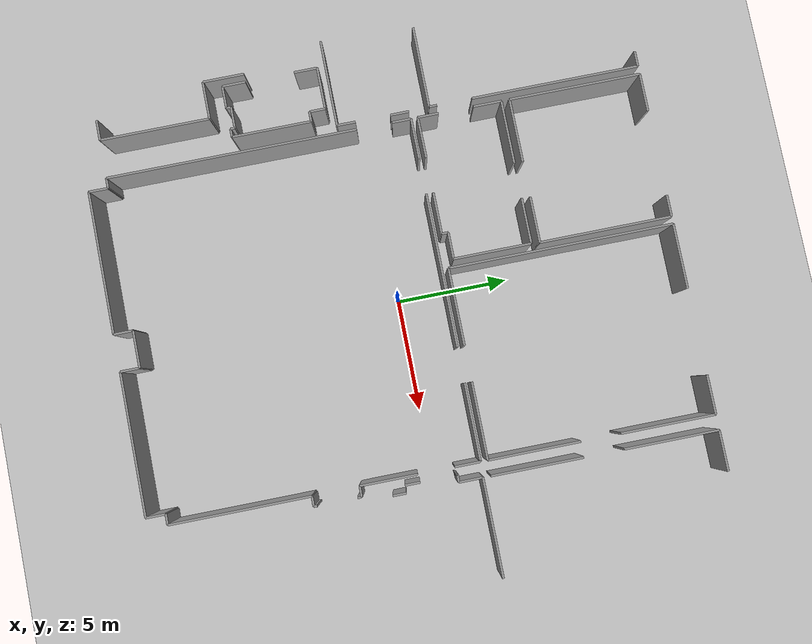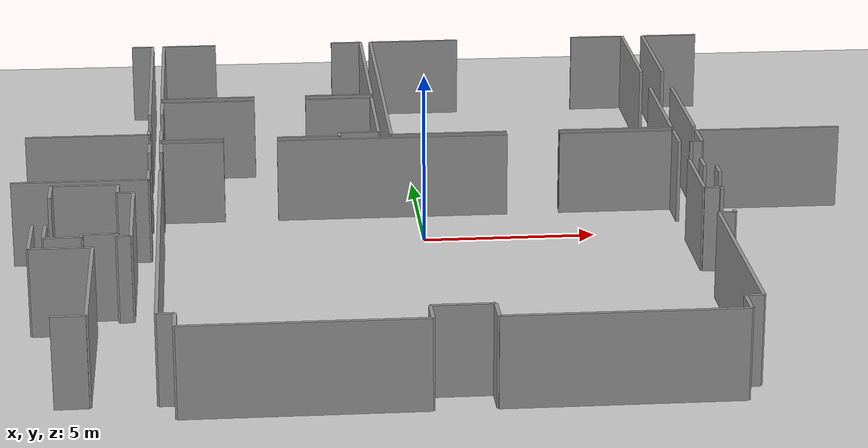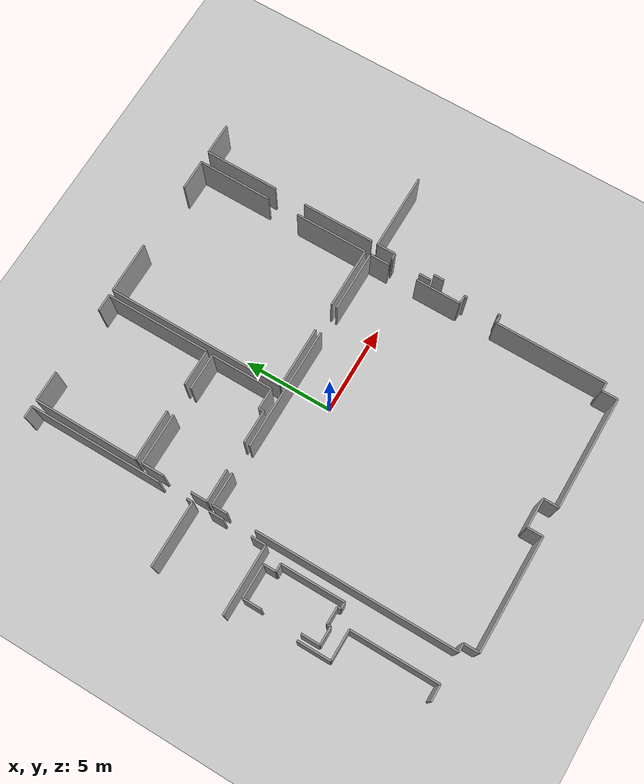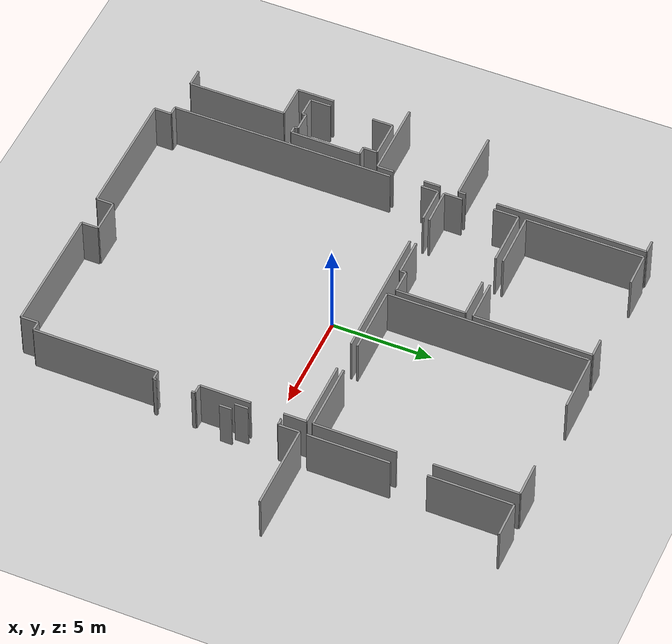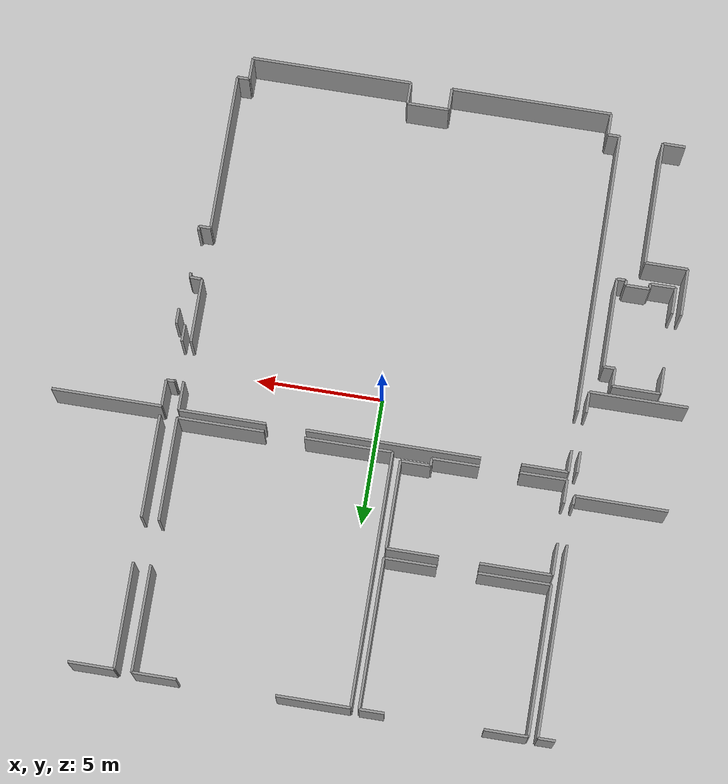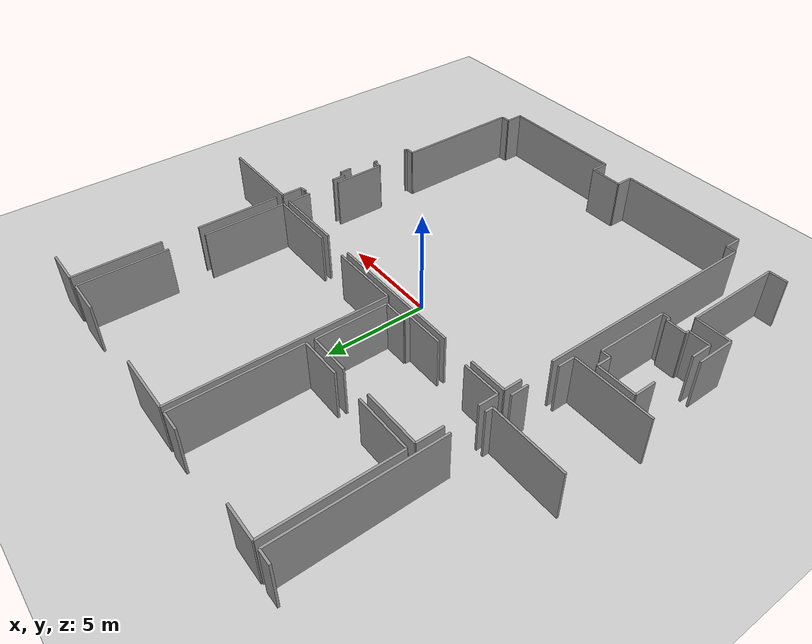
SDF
<sdf version="1.6">
 <world name="default">
  <model name="ground_plane">
   <static>1</static>
   <link name="link">
    <collision name="collision">
     <geometry><plane><normal>0 0 1</normal><size>100 100</size></plane></geometry>
     <surface><friction><ode><mu>100</mu><mu2>50</mu2></ode></friction></surface>
    </collision>
    <visual name="visual">
     <cast_shadows>0</cast_shadows>
     <geometry><plane><normal>0 0 1</normal><size>100 100</size></plane></geometry>
     <material>
      <script><uri>file://media/materials/scripts/gazebo.material</uri><name>Gazebo/Grey</name></script>
     </material>
    </visual>
   </link>
  </model>
  <model name="0510034691_Layout1">
   <static>1</static>
   <link name="Wall_57">
    <collision name="Wall_57_Collision">
     <geometry><box><size>0.836447291492 0.1 2.5</size></box></geometry>
     <pose>0.418223645746 0 1.25 0 0 0</pose>
    </collision>
    <visual name="Wall_57_Visual">
     <pose>0.418223645746 0 1.25 0 0 0</pose>
     <geometry><box><size>0.836447291492 0.1 2.5</size></box></geometry>
     <material>
      <script><uri>file://media/materials/scripts/gazebo.material</uri><name>Gazebo/Grey</name></script>
      <ambient>1 1 1 1</ambient>
     </material>
    </visual>
    <pose>48.5394900735 -10.374437581 0 0 0 -1.57079632679</pose>
   </link>
   <link name="Wall_58">
    <collision name="Wall_58_Collision">
     <geometry><box><size>0.828694171179 0.1 2.5</size></box></geometry>
     <pose>0.414347085589 0 1.25 0 0 0</pose>
    </collision>
    <visual name="Wall_58_Visual">
     <pose>0.414347085589 0 1.25 0 0 0</pose>
     <geometry><box><size>0.828694171179 0.1 2.5</size></box></geometry>
     <material>
      <script><uri>file://media/materials/scripts/gazebo.material</uri><name>Gazebo/Grey</name></script>
      <ambient>1 1 1 1</ambient>
     </material>
    </visual>
    <pose>48.5394900735 -12.7767609751 0 0 0 -1.57079632679</pose>
   </link>
   <link name="Wall_59">
    <collision name="Wall_59_Collision">
     <geometry><box><size>3.87744985892 0.1 2.5</size></box></geometry>
     <pose>1.93872492946 0 1.25 0 0 0</pose>
    </collision>
    <visual name="Wall_59_Visual">
     <pose>1.93872492946 0 1.25 0 0 0</pose>
     <geometry><box><size>3.87744985892 0.1 2.5</size></box></geometry>
     <material>
      <script><uri>file://media/materials/scripts/gazebo.material</uri><name>Gazebo/Grey</name></script>
      <ambient>1 1 1 1</ambient>
     </material>
    </visual>
    <pose>48.5394900735 -13.6054551463 0 0 0 3.14159265359</pose>
   </link>
   <link name="Wall_144">
    <collision name="Wall_144_Collision">
     <geometry><box><size>1.85960497217 0.1 2.5</size></box></geometry>
     <pose>0.929802486083 0 1.25 0 0 0</pose>
    </collision>
    <visual name="Wall_144_Visual">
     <pose>0.929802486083 0 1.25 0 0 0</pose>
     <geometry><box><size>1.85960497217 0.1 2.5</size></box></geometry>
     <material>
      <script><uri>file://media/materials/scripts/gazebo.material</uri><name>Gazebo/Grey</name></script>
      <ambient>1 1 1 1</ambient>
     </material>
    </visual>
    <pose>45.4575611988 -17.2077327843 0 0 0 -1.57079632679</pose>
   </link>
   <link name="Wall_145">
    <collision name="Wall_145_Collision">
     <geometry><box><size>1.68878212461 0.1 2.5</size></box></geometry>
     <pose>0.844391062305 0 1.25 0 0 0</pose>
    </collision>
    <visual name="Wall_145_Visual">
     <pose>0.844391062305 0 1.25 0 0 0</pose>
     <geometry><box><size>1.68878212461 0.1 2.5</size></box></geometry>
     <material>
      <script><uri>file://media/materials/scripts/gazebo.material</uri><name>Gazebo/Grey</name></script>
      <ambient>1 1 1 1</ambient>
     </material>
    </visual>
    <pose>45.4575611988 -19.0673377564 0 0 0 0.0</pose>
   </link>
   <link name="Wall_146">
    <collision name="Wall_146_Collision">
     <geometry><box><size>4.90353084725 0.1 2.5</size></box></geometry>
     <pose>2.45176542363 0 1.25 0 0 0</pose>
    </collision>
    <visual name="Wall_146_Visual">
     <pose>2.45176542363 0 1.25 0 0 0</pose>
     <geometry><box><size>4.90353084725 0.1 2.5</size></box></geometry>
     <material>
      <script><uri>file://media/materials/scripts/gazebo.material</uri><name>Gazebo/Grey</name></script>
      <ambient>1 1 1 1</ambient>
     </material>
    </visual>
    <pose>47.1463433234 -19.0673377564 0 0 0 -1.57079632679</pose>
   </link>
   <link name="Wall_147">
    <collision name="Wall_147_Collision">
     <geometry><box><size>0.895040545006 0.1 2.5</size></box></geometry>
     <pose>0.447520272503 0 1.25 0 0 0</pose>
    </collision>
    <visual name="Wall_147_Visual">
     <pose>0.447520272503 0 1.25 0 0 0</pose>
     <geometry><box><size>0.895040545006 0.1 2.5</size></box></geometry>
     <material>
      <script><uri>file://media/materials/scripts/gazebo.material</uri><name>Gazebo/Grey</name></script>
      <ambient>1 1 1 1</ambient>
     </material>
    </visual>
    <pose>47.1463433234 -23.9708686037 0 0 0 3.14159265359</pose>
   </link>
   <link name="Wall_149">
    <collision name="Wall_149_Collision">
     <geometry><box><size>1.04362083429 0.1 2.5</size></box></geometry>
     <pose>0.521810417143 0 1.25 0 0 0</pose>
    </collision>
    <visual name="Wall_149_Visual">
     <pose>0.521810417143 0 1.25 0 0 0</pose>
     <geometry><box><size>1.04362083429 0.1 2.5</size></box></geometry>
     <material>
      <script><uri>file://media/materials/scripts/gazebo.material</uri><name>Gazebo/Grey</name></script>
      <ambient>1 1 1 1</ambient>
     </material>
    </visual>
    <pose>45.8186532449 -18.2516078192 0 0 0 1.57079632679</pose>
   </link>
   <link name="Wall_150">
    <collision name="Wall_150_Collision">
     <geometry><box><size>1.04311243295 0.1 2.5</size></box></geometry>
     <pose>0.521556216477 0 1.25 0 0 0</pose>
    </collision>
    <visual name="Wall_150_Visual">
     <pose>0.521556216477 0 1.25 0 0 0</pose>
     <geometry><box><size>1.04311243295 0.1 2.5</size></box></geometry>
     <material>
      <script><uri>file://media/materials/scripts/gazebo.material</uri><name>Gazebo/Grey</name></script>
      <ambient>1 1 1 1</ambient>
     </material>
    </visual>
    <pose>45.8186532449 -15.0208444546 0 0 0 1.57079632679</pose>
   </link>
   <link name="Wall_151">
    <collision name="Wall_151_Collision">
     <geometry><box><size>1.87841582145 0.1 2.5</size></box></geometry>
     <pose>0.939207910725 0 1.25 0 0 0</pose>
    </collision>
    <visual name="Wall_151_Visual">
     <pose>0.939207910725 0 1.25 0 0 0</pose>
     <geometry><box><size>1.87841582145 0.1 2.5</size></box></geometry>
     <material>
      <script><uri>file://media/materials/scripts/gazebo.material</uri><name>Gazebo/Grey</name></script>
      <ambient>1 1 1 1</ambient>
     </material>
    </visual>
    <pose>45.8186532449 -13.9777320217 0 0 0 0.0</pose>
   </link>
   <link name="Wall_152">
    <collision name="Wall_152_Collision">
     <geometry><box><size>0.707059152495 0.1 2.5</size></box></geometry>
     <pose>0.353529576247 0 1.25 0 0 0</pose>
    </collision>
    <visual name="Wall_152_Visual">
     <pose>0.353529576247 0 1.25 0 0 0</pose>
     <geometry><box><size>0.707059152495 0.1 2.5</size></box></geometry>
     <material>
      <script><uri>file://media/materials/scripts/gazebo.material</uri><name>Gazebo/Grey</name></script>
      <ambient>1 1 1 1</ambient>
     </material>
    </visual>
    <pose>47.6970690663 -13.9777320217 0 0 0 -1.57079632679</pose>
   </link>
   <link name="Wall_153">
    <collision name="Wall_153_Collision">
     <geometry><box><size>0.441927857851 0.1 2.5</size></box></geometry>
     <pose>0.220963928925 0 1.25 0 0 0</pose>
    </collision>
    <visual name="Wall_153_Visual">
     <pose>0.220963928925 0 1.25 0 0 0</pose>
     <geometry><box><size>0.441927857851 0.1 2.5</size></box></geometry>
     <material>
      <script><uri>file://media/materials/scripts/gazebo.material</uri><name>Gazebo/Grey</name></script>
      <ambient>1 1 1 1</ambient>
     </material>
    </visual>
    <pose>47.6970690663 -14.6847911742 0 0 0 0.0</pose>
   </link>
   <link name="Wall_154">
    <collision name="Wall_154_Collision">
     <geometry><box><size>3.55664861842 0.1 2.5</size></box></geometry>
     <pose>1.77832430921 0 1.25 0 0 0</pose>
    </collision>
    <visual name="Wall_154_Visual">
     <pose>1.77832430921 0 1.25 0 0 0</pose>
     <geometry><box><size>3.55664861842 0.1 2.5</size></box></geometry>
     <material>
      <script><uri>file://media/materials/scripts/gazebo.material</uri><name>Gazebo/Grey</name></script>
      <ambient>1 1 1 1</ambient>
     </material>
    </visual>
    <pose>48.1389969242 -14.6847911742 0 0 0 -1.57079632679</pose>
   </link>
   <link name="Wall_155">
    <collision name="Wall_155_Collision">
     <geometry><box><size>0.363252751722 0.1 2.5</size></box></geometry>
     <pose>0.181626375861 0 1.25 0 0 0</pose>
    </collision>
    <visual name="Wall_155_Visual">
     <pose>0.181626375861 0 1.25 0 0 0</pose>
     <geometry><box><size>0.363252751722 0.1 2.5</size></box></geometry>
     <material>
      <script><uri>file://media/materials/scripts/gazebo.material</uri><name>Gazebo/Grey</name></script>
      <ambient>1 1 1 1</ambient>
     </material>
    </visual>
    <pose>48.1389969242 -18.2414397926 0 0 0 3.14159265359</pose>
   </link>
   <link name="Wall_156">
    <collision name="Wall_156_Collision">
     <geometry><box><size>0.195099011159 0.1 2.5</size></box></geometry>
     <pose>0.0975495055797 0 1.25 0 0 0</pose>
    </collision>
    <visual name="Wall_156_Visual">
     <pose>0.0975495055797 0 1.25 0 0 0</pose>
     <geometry><box><size>0.195099011159 0.1 2.5</size></box></geometry>
     <material>
      <script><uri>file://media/materials/scripts/gazebo.material</uri><name>Gazebo/Grey</name></script>
      <ambient>1 1 1 1</ambient>
     </material>
    </visual>
    <pose>47.7757441724 -18.2414397926 0 0 0 1.57079632679</pose>
   </link>
   <link name="Wall_157">
    <collision name="Wall_157_Collision">
     <geometry><box><size>0.953887999187 0.1 2.5</size></box></geometry>
     <pose>0.476943999593 0 1.25 0 0 0</pose>
    </collision>
    <visual name="Wall_157_Visual">
     <pose>0.476943999593 0 1.25 0 0 0</pose>
     <geometry><box><size>0.953887999187 0.1 2.5</size></box></geometry>
     <material>
      <script><uri>file://media/materials/scripts/gazebo.material</uri><name>Gazebo/Grey</name></script>
      <ambient>1 1 1 1</ambient>
     </material>
    </visual>
    <pose>47.7757441724 -18.0463407814 0 0 0 3.14159265359</pose>
   </link>
   <link name="Wall_158">
    <collision name="Wall_158_Collision">
     <geometry><box><size>0.202343730141 0.1 2.5</size></box></geometry>
     <pose>0.10117186507 0 1.25 0 0 0</pose>
    </collision>
    <visual name="Wall_158_Visual">
     <pose>0.10117186507 0 1.25 0 0 0</pose>
     <geometry><box><size>0.202343730141 0.1 2.5</size></box></geometry>
     <material>
      <script><uri>file://media/materials/scripts/gazebo.material</uri><name>Gazebo/Grey</name></script>
      <ambient>1 1 1 1</ambient>
     </material>
    </visual>
    <pose>46.8218561733 -18.0463407814 0 0 0 -1.57079632679</pose>
   </link>
   <link name="Wall_159">
    <collision name="Wall_159_Collision">
     <geometry><box><size>1.0032071876 0.1 2.5</size></box></geometry>
     <pose>0.501603593802 0 1.25 0 0 0</pose>
    </collision>
    <visual name="Wall_159_Visual">
     <pose>0.501603593802 0 1.25 0 0 0</pose>
     <geometry><box><size>1.0032071876 0.1 2.5</size></box></geometry>
     <material>
      <script><uri>file://media/materials/scripts/gazebo.material</uri><name>Gazebo/Grey</name></script>
      <ambient>1 1 1 1</ambient>
     </material>
    </visual>
    <pose>46.8218561733 -18.2486845116 0 0 0 -3.13867868743</pose>
   </link>
   <link name="Wall_164">
    <collision name="Wall_164_Collision">
     <geometry><box><size>0.675919570909 0.1 2.5</size></box></geometry>
     <pose>0.337959785455 0 1.25 0 0 0</pose>
    </collision>
    <visual name="Wall_164_Visual">
     <pose>0.337959785455 0 1.25 0 0 0</pose>
     <geometry><box><size>0.675919570909 0.1 2.5</size></box></geometry>
     <material>
      <script><uri>file://media/materials/scripts/gazebo.material</uri><name>Gazebo/Grey</name></script>
      <ambient>1 1 1 1</ambient>
     </material>
    </visual>
    <pose>47.8276011083 -0.0165230432904 0 0 0 0.0</pose>
   </link>
   <link name="Wall_165">
    <collision name="Wall_165_Collision">
     <geometry><box><size>7.50997737614 0.1 2.5</size></box></geometry>
     <pose>3.75498868807 0 1.25 0 0 0</pose>
    </collision>
    <visual name="Wall_165_Visual">
     <pose>3.75498868807 0 1.25 0 0 0</pose>
     <geometry><box><size>7.50997737614 0.1 2.5</size></box></geometry>
     <material>
      <script><uri>file://media/materials/scripts/gazebo.material</uri><name>Gazebo/Grey</name></script>
      <ambient>1 1 1 1</ambient>
     </material>
    </visual>
    <pose>48.5035206792 -0.0165230432904 0 0 0 -1.57079632679</pose>
   </link>
   <link name="Wall_166">
    <collision name="Wall_166_Collision">
     <geometry><box><size>0.35384732708 0.1 2.5</size></box></geometry>
     <pose>0.17692366354 0 1.25 0 0 0</pose>
    </collision>
    <visual name="Wall_166_Visual">
     <pose>0.17692366354 0 1.25 0 0 0</pose>
     <geometry><box><size>0.35384732708 0.1 2.5</size></box></geometry>
     <material>
      <script><uri>file://media/materials/scripts/gazebo.material</uri><name>Gazebo/Grey</name></script>
      <ambient>1 1 1 1</ambient>
     </material>
    </visual>
    <pose>48.5035206792 -9.10534075599 0 0 0 -1.57079632679</pose>
   </link>
   <link name="Wall_167">
    <collision name="Wall_167_Collision">
     <geometry><box><size>3.65414307076 0.1 2.5</size></box></geometry>
     <pose>1.82707153538 0 1.25 0 0 0</pose>
    </collision>
    <visual name="Wall_167_Visual">
     <pose>1.82707153538 0 1.25 0 0 0</pose>
     <geometry><box><size>3.65414307076 0.1 2.5</size></box></geometry>
     <material>
      <script><uri>file://media/materials/scripts/gazebo.material</uri><name>Gazebo/Grey</name></script>
      <ambient>1 1 1 1</ambient>
     </material>
    </visual>
    <pose>48.5035206792 -9.45918808307 0 0 0 3.13943613519</pose>
   </link>
   <link name="Wall_168">
    <collision name="Wall_168_Collision">
     <geometry><box><size>11.1975393376 0.1 2.5</size></box></geometry>
     <pose>5.59876966878 0 1.25 0 0 0</pose>
    </collision>
    <visual name="Wall_168_Visual">
     <pose>5.59876966878 0 1.25 0 0 0</pose>
     <geometry><box><size>11.1975393376 0.1 2.5</size></box></geometry>
     <material>
      <script><uri>file://media/materials/scripts/gazebo.material</uri><name>Gazebo/Grey</name></script>
      <ambient>1 1 1 1</ambient>
     </material>
    </visual>
    <pose>48.8796105646 -23.9868832456 0 0 0 1.57079632679</pose>
   </link>
   <link name="Wall_169">
    <collision name="Wall_169_Collision">
     <geometry><box><size>0.859325351432 0.1 2.5</size></box></geometry>
     <pose>0.429662675716 0 1.25 0 0 0</pose>
    </collision>
    <visual name="Wall_169_Visual">
     <pose>0.429662675716 0 1.25 0 0 0</pose>
     <geometry><box><size>0.859325351432 0.1 2.5</size></box></geometry>
     <material>
      <script><uri>file://media/materials/scripts/gazebo.material</uri><name>Gazebo/Grey</name></script>
      <ambient>1 1 1 1</ambient>
     </material>
    </visual>
    <pose>48.8796105646 -11.2032588525 0 0 0 1.57079632679</pose>
   </link>
   <link name="Wall_170">
    <collision name="Wall_170_Collision">
     <geometry><box><size>1.83253260124 0.1 2.5</size></box></geometry>
     <pose>0.916266300618 0 1.25 0 0 0</pose>
    </collision>
    <visual name="Wall_170_Visual">
     <pose>0.916266300618 0 1.25 0 0 0</pose>
     <geometry><box><size>1.83253260124 0.1 2.5</size></box></geometry>
     <material>
      <script><uri>file://media/materials/scripts/gazebo.material</uri><name>Gazebo/Grey</name></script>
      <ambient>1 1 1 1</ambient>
     </material>
    </visual>
    <pose>48.8796105646 -10.3439335011 0 0 0 0.0</pose>
   </link>
   <link name="Wall_171">
    <collision name="Wall_171_Collision">
     <geometry><box><size>6.85795266784 0.1 2.5</size></box></geometry>
     <pose>3.42897633392 0 1.25 0 0 0</pose>
    </collision>
    <visual name="Wall_171_Visual">
     <pose>3.42897633392 0 1.25 0 0 0</pose>
     <geometry><box><size>6.85795266784 0.1 2.5</size></box></geometry>
     <material>
      <script><uri>file://media/materials/scripts/gazebo.material</uri><name>Gazebo/Grey</name></script>
      <ambient>1 1 1 1</ambient>
     </material>
    </visual>
    <pose>52.295050713 -10.3439335011 0 0 0 0.0</pose>
   </link>
   <link name="Wall_172">
    <collision name="Wall_172_Collision">
     <geometry><box><size>3.43196319174 0.1 2.5</size></box></geometry>
     <pose>1.71598159587 0 1.25 0 0 0</pose>
    </collision>
    <visual name="Wall_172_Visual">
     <pose>1.71598159587 0 1.25 0 0 0</pose>
     <geometry><box><size>3.43196319174 0.1 2.5</size></box></geometry>
     <material>
      <script><uri>file://media/materials/scripts/gazebo.material</uri><name>Gazebo/Grey</name></script>
      <ambient>1 1 1 1</ambient>
     </material>
    </visual>
    <pose>60.7232008948 -10.3439335011 0 0 0 0.0</pose>
   </link>
   <link name="Wall_173">
    <collision name="Wall_173_Collision">
     <geometry><box><size>1.13004906073 0.1 2.5</size></box></geometry>
     <pose>0.565024530364 0 1.25 0 0 0</pose>
    </collision>
    <visual name="Wall_173_Visual">
     <pose>0.565024530364 0 1.25 0 0 0</pose>
     <geometry><box><size>1.13004906073 0.1 2.5</size></box></geometry>
     <material>
      <script><uri>file://media/materials/scripts/gazebo.material</uri><name>Gazebo/Grey</name></script>
      <ambient>1 1 1 1</ambient>
     </material>
    </visual>
    <pose>64.1551640865 -10.3439335011 0 0 0 -1.57079632679</pose>
   </link>
   <link name="Wall_174">
    <collision name="Wall_174_Collision">
     <geometry><box><size>2.53145733242 0.1 2.5</size></box></geometry>
     <pose>1.26572866621 0 1.25 0 0 0</pose>
    </collision>
    <visual name="Wall_174_Visual">
     <pose>1.26572866621 0 1.25 0 0 0</pose>
     <geometry><box><size>2.53145733242 0.1 2.5</size></box></geometry>
     <material>
      <script><uri>file://media/materials/scripts/gazebo.material</uri><name>Gazebo/Grey</name></script>
      <ambient>1 1 1 1</ambient>
     </material>
    </visual>
    <pose>64.1551640865 -13.0906987976 0 0 0 -1.57079632679</pose>
   </link>
   <link name="Wall_175">
    <collision name="Wall_175_Collision">
     <geometry><box><size>0.47319078444 0.1 2.5</size></box></geometry>
     <pose>0.23659539222 0 1.25 0 0 0</pose>
    </collision>
    <visual name="Wall_175_Visual">
     <pose>0.23659539222 0 1.25 0 0 0</pose>
     <geometry><box><size>0.47319078444 0.1 2.5</size></box></geometry>
     <material>
      <script><uri>file://media/materials/scripts/gazebo.material</uri><name>Gazebo/Grey</name></script>
      <ambient>1 1 1 1</ambient>
     </material>
    </visual>
    <pose>64.1551640865 -15.62215613 0 0 0 -0.022833215406</pose>
   </link>
   <link name="Wall_176">
    <collision name="Wall_176_Collision">
     <geometry><box><size>0.172093850886 0.1 2.5</size></box></geometry>
     <pose>0.0860469254429 0 1.25 0 0 0</pose>
    </collision>
    <visual name="Wall_176_Visual">
     <pose>0.0860469254429 0 1.25 0 0 0</pose>
     <geometry><box><size>0.172093850886 0.1 2.5</size></box></geometry>
     <material>
      <script><uri>file://media/materials/scripts/gazebo.material</uri><name>Gazebo/Grey</name></script>
      <ambient>1 1 1 1</ambient>
     </material>
    </visual>
    <pose>64.628231526 -15.6329596584 0 0 0 -1.57079632679</pose>
   </link>
   <link name="Wall_177">
    <collision name="Wall_177_Collision">
     <geometry><box><size>0.152901700602 0.1 2.5</size></box></geometry>
     <pose>0.0764508503012 0 1.25 0 0 0</pose>
    </collision>
    <visual name="Wall_177_Visual">
     <pose>0.0764508503012 0 1.25 0 0 0</pose>
     <geometry><box><size>0.152901700602 0.1 2.5</size></box></geometry>
     <material>
      <script><uri>file://media/materials/scripts/gazebo.material</uri><name>Gazebo/Grey</name></script>
      <ambient>1 1 1 1</ambient>
     </material>
    </visual>
    <pose>64.628231526 -17.5586568037 0 0 0 -1.57079632679</pose>
   </link>
   <link name="Wall_178">
    <collision name="Wall_178_Collision">
     <geometry><box><size>0.449172576832 0.1 2.5</size></box></geometry>
     <pose>0.224586288416 0 1.25 0 0 0</pose>
    </collision>
    <visual name="Wall_178_Visual">
     <pose>0.224586288416 0 1.25 0 0 0</pose>
     <geometry><box><size>0.449172576832 0.1 2.5</size></box></geometry>
     <material>
      <script><uri>file://media/materials/scripts/gazebo.material</uri><name>Gazebo/Grey</name></script>
      <ambient>1 1 1 1</ambient>
     </material>
    </visual>
    <pose>64.628231526 -17.7115585043 0 0 0 3.14159265359</pose>
   </link>
   <link name="Wall_179">
    <collision name="Wall_179_Collision">
     <geometry><box><size>6.25638679173 0.1 2.5</size></box></geometry>
     <pose>3.12819339587 0 1.25 0 0 0</pose>
    </collision>
    <visual name="Wall_179_Visual">
     <pose>3.12819339587 0 1.25 0 0 0</pose>
     <geometry><box><size>6.25638679173 0.1 2.5</size></box></geometry>
     <material>
      <script><uri>file://media/materials/scripts/gazebo.material</uri><name>Gazebo/Grey</name></script>
      <ambient>1 1 1 1</ambient>
     </material>
    </visual>
    <pose>64.1790589491 -17.7115585043 0 0 0 -1.57079632679</pose>
   </link>
   <link name="Wall_180">
    <collision name="Wall_180_Collision">
     <geometry><box><size>0.474719743766 0.1 2.5</size></box></geometry>
     <pose>0.237359871883 0 1.25 0 0 0</pose>
    </collision>
    <visual name="Wall_180_Visual">
     <pose>0.237359871883 0 1.25 0 0 0</pose>
     <geometry><box><size>0.474719743766 0.1 2.5</size></box></geometry>
     <material>
      <script><uri>file://media/materials/scripts/gazebo.material</uri><name>Gazebo/Grey</name></script>
      <ambient>1 1 1 1</ambient>
     </material>
    </visual>
    <pose>64.1790589491 -23.967945296 0 0 0 3.14159265359</pose>
   </link>
   <link name="Wall_181">
    <collision name="Wall_181_Collision">
     <geometry><box><size>0.872035384733 0.1 2.5</size></box></geometry>
     <pose>0.436017692366 0 1.25 0 0 0</pose>
    </collision>
    <visual name="Wall_181_Visual">
     <pose>0.436017692366 0 1.25 0 0 0</pose>
     <geometry><box><size>0.872035384733 0.1 2.5</size></box></geometry>
     <material>
      <script><uri>file://media/materials/scripts/gazebo.material</uri><name>Gazebo/Grey</name></script>
      <ambient>1 1 1 1</ambient>
     </material>
    </visual>
    <pose>63.7043392054 -23.967945296 0 0 0 -1.57079632679</pose>
   </link>
   <link name="Wall_182">
    <collision name="Wall_182_Collision">
     <geometry><box><size>6.3444673225 0.1 2.5</size></box></geometry>
     <pose>3.17223366125 0 1.25 0 0 0</pose>
    </collision>
    <visual name="Wall_182_Visual">
     <pose>3.17223366125 0 1.25 0 0 0</pose>
     <geometry><box><size>6.3444673225 0.1 2.5</size></box></geometry>
     <material>
      <script><uri>file://media/materials/scripts/gazebo.material</uri><name>Gazebo/Grey</name></script>
      <ambient>1 1 1 1</ambient>
     </material>
    </visual>
    <pose>63.7043392054 -24.8399806807 0 0 0 3.14159265359</pose>
   </link>
   <link name="Wall_183">
    <collision name="Wall_183_Collision">
     <geometry><box><size>0.853097435115 0.1 2.5</size></box></geometry>
     <pose>0.426548717558 0 1.25 0 0 0</pose>
    </collision>
    <visual name="Wall_183_Visual">
     <pose>0.426548717558 0 1.25 0 0 0</pose>
     <geometry><box><size>0.853097435115 0.1 2.5</size></box></geometry>
     <material>
      <script><uri>file://media/materials/scripts/gazebo.material</uri><name>Gazebo/Grey</name></script>
      <ambient>1 1 1 1</ambient>
     </material>
    </visual>
    <pose>57.3598718829 -24.8399806807 0 0 0 1.57079632679</pose>
   </link>
   <link name="Wall_184">
    <collision name="Wall_184_Collision">
     <geometry><box><size>1.64925392105 0.1 2.5</size></box></geometry>
     <pose>0.824626960523 0 1.25 0 0 0</pose>
    </collision>
    <visual name="Wall_184_Visual">
     <pose>0.824626960523 0 1.25 0 0 0</pose>
     <geometry><box><size>1.64925392105 0.1 2.5</size></box></geometry>
     <material>
      <script><uri>file://media/materials/scripts/gazebo.material</uri><name>Gazebo/Grey</name></script>
      <ambient>1 1 1 1</ambient>
     </material>
    </visual>
    <pose>57.3598718829 -23.9868832456 0 0 0 3.14159265359</pose>
   </link>
   <link name="Wall_185">
    <collision name="Wall_185_Collision">
     <geometry><box><size>0.859452451765 0.1 2.5</size></box></geometry>
     <pose>0.429726225883 0 1.25 0 0 0</pose>
    </collision>
    <visual name="Wall_185_Visual">
     <pose>0.429726225883 0 1.25 0 0 0</pose>
     <geometry><box><size>0.859452451765 0.1 2.5</size></box></geometry>
     <material>
      <script><uri>file://media/materials/scripts/gazebo.material</uri><name>Gazebo/Grey</name></script>
      <ambient>1 1 1 1</ambient>
     </material>
    </visual>
    <pose>55.7106179618 -23.9868832456 0 0 0 -1.57079632679</pose>
   </link>
   <link name="Wall_186">
    <collision name="Wall_186_Collision">
     <geometry><box><size>6.37306489743 0.1 2.5</size></box></geometry>
     <pose>3.18653244872 0 1.25 0 0 0</pose>
    </collision>
    <visual name="Wall_186_Visual">
     <pose>3.18653244872 0 1.25 0 0 0</pose>
     <geometry><box><size>6.37306489743 0.1 2.5</size></box></geometry>
     <material>
      <script><uri>file://media/materials/scripts/gazebo.material</uri><name>Gazebo/Grey</name></script>
      <ambient>1 1 1 1</ambient>
     </material>
    </visual>
    <pose>55.7106179618 -24.8463356974 0 0 0 3.14159265359</pose>
   </link>
   <link name="Wall_187">
    <collision name="Wall_187_Collision">
     <geometry><box><size>0.862121558758 0.1 2.5</size></box></geometry>
     <pose>0.431060779379 0 1.25 0 0 0</pose>
    </collision>
    <visual name="Wall_187_Visual">
     <pose>0.431060779379 0 1.25 0 0 0</pose>
     <geometry><box><size>0.862121558758 0.1 2.5</size></box></geometry>
     <material>
      <script><uri>file://media/materials/scripts/gazebo.material</uri><name>Gazebo/Grey</name></script>
      <ambient>1 1 1 1</ambient>
     </material>
    </visual>
    <pose>49.3375530644 -24.8463356974 0 0 0 1.57079632679</pose>
   </link>
   <link name="Wall_188">
    <collision name="Wall_188_Collision">
     <geometry><box><size>0.457950278157 0.1 2.5</size></box></geometry>
     <pose>0.228975139078 0 1.25 0 0 0</pose>
    </collision>
    <visual name="Wall_188_Visual">
     <pose>0.228975139078 0 1.25 0 0 0</pose>
     <geometry><box><size>0.457950278157 0.1 2.5</size></box></geometry>
     <material>
      <script><uri>file://media/materials/scripts/gazebo.material</uri><name>Gazebo/Grey</name></script>
      <ambient>1 1 1 1</ambient>
     </material>
    </visual>
    <pose>49.3375530644 -23.9842141386 0 0 0 -3.13576424332</pose>
   </link>
   <link name="Wall_189">
    <collision name="Wall_189_Collision">
     <geometry><box><size>0.92694272859 0.1 2.5</size></box></geometry>
     <pose>0.463471364295 0 1.25 0 0 0</pose>
    </collision>
    <visual name="Wall_189_Visual">
     <pose>0.463471364295 0 1.25 0 0 0</pose>
     <geometry><box><size>0.92694272859 0.1 2.5</size></box></geometry>
     <material>
      <script><uri>file://media/materials/scripts/gazebo.material</uri><name>Gazebo/Grey</name></script>
      <ambient>1 1 1 1</ambient>
     </material>
    </visual>
    <pose>48.8745265513 -10.0425786116 0 0 0 1.57079632679</pose>
   </link>
   <link name="Wall_190">
    <collision name="Wall_190_Collision">
     <geometry><box><size>1.26147080505 0.1 2.5</size></box></geometry>
     <pose>0.630735402527 0 1.25 0 0 0</pose>
    </collision>
    <visual name="Wall_190_Visual">
     <pose>0.630735402527 0 1.25 0 0 0</pose>
     <geometry><box><size>1.26147080505 0.1 2.5</size></box></geometry>
     <material>
      <script><uri>file://media/materials/scripts/gazebo.material</uri><name>Gazebo/Grey</name></script>
      <ambient>1 1 1 1</ambient>
     </material>
    </visual>
    <pose>48.8745265513 -7.53882915173 0 0 0 1.57079632679</pose>
   </link>
   <link name="Wall_191">
    <collision name="Wall_191_Collision">
     <geometry><box><size>2.83827753629 0.1 2.5</size></box></geometry>
     <pose>1.41913876814 0 1.25 0 0 0</pose>
    </collision>
    <visual name="Wall_191_Visual">
     <pose>1.41913876814 0 1.25 0 0 0</pose>
     <geometry><box><size>2.83827753629 0.1 2.5</size></box></geometry>
     <material>
      <script><uri>file://media/materials/scripts/gazebo.material</uri><name>Gazebo/Grey</name></script>
      <ambient>1 1 1 1</ambient>
     </material>
    </visual>
    <pose>48.8745265513 -6.27735834668 0 0 0 0.0</pose>
   </link>
   <link name="Wall_192">
    <collision name="Wall_192_Collision">
     <geometry><box><size>2.04847606701 0.1 2.5</size></box></geometry>
     <pose>1.0242380335 0 1.25 0 0 0</pose>
    </collision>
    <visual name="Wall_192_Visual">
     <pose>1.0242380335 0 1.25 0 0 0</pose>
     <geometry><box><size>2.04847606701 0.1 2.5</size></box></geometry>
     <material>
      <script><uri>file://media/materials/scripts/gazebo.material</uri><name>Gazebo/Grey</name></script>
      <ambient>1 1 1 1</ambient>
     </material>
    </visual>
    <pose>53.2992704441 -6.27735834668 0 0 0 0.0</pose>
   </link>
   <link name="Wall_193">
    <collision name="Wall_193_Collision">
     <geometry><box><size>3.46310277333 0.1 2.5</size></box></geometry>
     <pose>1.73155138666 0 1.25 0 0 0</pose>
    </collision>
    <visual name="Wall_193_Visual">
     <pose>1.73155138666 0 1.25 0 0 0</pose>
     <geometry><box><size>3.46310277333 0.1 2.5</size></box></geometry>
     <material>
      <script><uri>file://media/materials/scripts/gazebo.material</uri><name>Gazebo/Grey</name></script>
      <ambient>1 1 1 1</ambient>
     </material>
    </visual>
    <pose>55.3477465111 -6.27735834668 0 0 0 -1.57079632679</pose>
   </link>
   <link name="Wall_194">
    <collision name="Wall_194_Collision">
     <geometry><box><size>1.1807620936 0.1 2.5</size></box></geometry>
     <pose>0.590381046798 0 1.25 0 0 0</pose>
    </collision>
    <visual name="Wall_194_Visual">
     <pose>0.590381046798 0 1.25 0 0 0</pose>
     <geometry><box><size>1.1807620936 0.1 2.5</size></box></geometry>
     <material>
      <script><uri>file://media/materials/scripts/gazebo.material</uri><name>Gazebo/Grey</name></script>
      <ambient>1 1 1 1</ambient>
     </material>
    </visual>
    <pose>55.3477465111 -9.74046112001 0 0 0 3.14159265359</pose>
   </link>
   <link name="Wall_195">
    <collision name="Wall_195_Collision">
     <geometry><box><size>0.291313963243 0.1 2.5</size></box></geometry>
     <pose>0.145656981621 0 1.25 0 0 0</pose>
    </collision>
    <visual name="Wall_195_Visual">
     <pose>0.145656981621 0 1.25 0 0 0</pose>
     <geometry><box><size>0.291313963243 0.1 2.5</size></box></geometry>
     <material>
      <script><uri>file://media/materials/scripts/gazebo.material</uri><name>Gazebo/Grey</name></script>
      <ambient>1 1 1 1</ambient>
     </material>
    </visual>
    <pose>54.1669844175 -9.74046112001 0 0 0 -1.57079632679</pose>
   </link>
   <link name="Wall_196">
    <collision name="Wall_196_Collision">
     <geometry><box><size>1.85731716617 0.1 2.5</size></box></geometry>
     <pose>0.928658583085 0 1.25 0 0 0</pose>
    </collision>
    <visual name="Wall_196_Visual">
     <pose>0.928658583085 0 1.25 0 0 0</pose>
     <geometry><box><size>1.85731716617 0.1 2.5</size></box></geometry>
     <material>
      <script><uri>file://media/materials/scripts/gazebo.material</uri><name>Gazebo/Grey</name></script>
      <ambient>1 1 1 1</ambient>
     </material>
    </visual>
    <pose>54.1669844175 -10.0317750833 0 0 0 3.14159265359</pose>
   </link>
   <link name="Wall_197">
    <collision name="Wall_197_Collision">
     <geometry><box><size>1.84349488638 0.1 2.5</size></box></geometry>
     <pose>0.921747443191 0 1.25 0 0 0</pose>
    </collision>
    <visual name="Wall_197_Visual">
     <pose>0.921747443191 0 1.25 0 0 0</pose>
     <geometry><box><size>1.84349488638 0.1 2.5</size></box></geometry>
     <material>
      <script><uri>file://media/materials/scripts/gazebo.material</uri><name>Gazebo/Grey</name></script>
      <ambient>1 1 1 1</ambient>
     </material>
    </visual>
    <pose>50.7179897811 -10.0317750833 0 0 0 -3.13573226839</pose>
   </link>
   <link name="Wall_198">
    <collision name="Wall_198_Collision">
     <geometry><box><size>5.89376954168 0.1 2.5</size></box></geometry>
     <pose>2.94688477084 0 1.25 0 0 0</pose>
    </collision>
    <visual name="Wall_198_Visual">
     <pose>2.94688477084 0 1.25 0 0 0</pose>
     <geometry><box><size>5.89376954168 0.1 2.5</size></box></geometry>
     <material>
      <script><uri>file://media/materials/scripts/gazebo.material</uri><name>Gazebo/Grey</name></script>
      <ambient>1 1 1 1</ambient>
     </material>
    </visual>
    <pose>48.8714761433 -5.90584407331 0 0 0 1.57079632679</pose>
   </link>
   <link name="Wall_199">
    <collision name="Wall_199_Collision">
     <geometry><box><size>1.70174635858 0.1 2.5</size></box></geometry>
     <pose>0.850873179288 0 1.25 0 0 0</pose>
    </collision>
    <visual name="Wall_199_Visual">
     <pose>0.850873179288 0 1.25 0 0 0</pose>
     <geometry><box><size>1.70174635858 0.1 2.5</size></box></geometry>
     <material>
      <script><uri>file://media/materials/scripts/gazebo.material</uri><name>Gazebo/Grey</name></script>
      <ambient>1 1 1 1</ambient>
     </material>
    </visual>
    <pose>48.8714761433 -0.0120745316353 0 0 0 0.0</pose>
   </link>
   <link name="Wall_200">
    <collision name="Wall_200_Collision">
     <geometry><box><size>0.97308014947 0.1 2.5</size></box></geometry>
     <pose>0.486540074735 0 1.25 0 0 0</pose>
    </collision>
    <visual name="Wall_200_Visual">
     <pose>0.486540074735 0 1.25 0 0 0</pose>
     <geometry><box><size>0.97308014947 0.1 2.5</size></box></geometry>
     <material>
      <script><uri>file://media/materials/scripts/gazebo.material</uri><name>Gazebo/Grey</name></script>
      <ambient>1 1 1 1</ambient>
     </material>
    </visual>
    <pose>54.4026284349 -0.0120745316353 0 0 0 0.0</pose>
   </link>
   <link name="Wall_201">
    <collision name="Wall_201_Collision">
     <geometry><box><size>5.89008363202 0.1 2.5</size></box></geometry>
     <pose>2.94504181601 0 1.25 0 0 0</pose>
    </collision>
    <visual name="Wall_201_Visual">
     <pose>2.94504181601 0 1.25 0 0 0</pose>
     <geometry><box><size>5.89008363202 0.1 2.5</size></box></geometry>
     <material>
      <script><uri>file://media/materials/scripts/gazebo.material</uri><name>Gazebo/Grey</name></script>
      <ambient>1 1 1 1</ambient>
     </material>
    </visual>
    <pose>55.3757085844 -0.0120745316353 0 0 0 -1.57079632679</pose>
   </link>
   <link name="Wall_202">
    <collision name="Wall_202_Collision">
     <geometry><box><size>2.05927959531 0.1 2.5</size></box></geometry>
     <pose>1.02963979766 0 1.25 0 0 0</pose>
    </collision>
    <visual name="Wall_202_Visual">
     <pose>1.02963979766 0 1.25 0 0 0</pose>
     <geometry><box><size>2.05927959531 0.1 2.5</size></box></geometry>
     <material>
      <script><uri>file://media/materials/scripts/gazebo.material</uri><name>Gazebo/Grey</name></script>
      <ambient>1 1 1 1</ambient>
     </material>
    </visual>
    <pose>55.3757085844 -5.90215816365 0 0 0 3.14159265359</pose>
   </link>
   <link name="Wall_203">
    <collision name="Wall_203_Collision">
     <geometry><box><size>2.85086285203 0.1 2.5</size></box></geometry>
     <pose>1.42543142602 0 1.25 0 0 0</pose>
    </collision>
    <visual name="Wall_203_Visual">
     <pose>1.42543142602 0 1.25 0 0 0</pose>
     <geometry><box><size>2.85086285203 0.1 2.5</size></box></geometry>
     <material>
      <script><uri>file://media/materials/scripts/gazebo.material</uri><name>Gazebo/Grey</name></script>
      <ambient>1 1 1 1</ambient>
     </material>
    </visual>
    <pose>51.7223366125 -5.90215816365 0 0 0 -3.14029974303</pose>
   </link>
   <link name="Wall_204">
    <collision name="Wall_204_Collision">
     <geometry><box><size>10.0280891736 0.1 2.5</size></box></geometry>
     <pose>5.0140445868 0 1.25 0 0 0</pose>
    </collision>
    <visual name="Wall_204_Visual">
     <pose>5.0140445868 0 1.25 0 0 0</pose>
     <geometry><box><size>10.0280891736 0.1 2.5</size></box></geometry>
     <material>
      <script><uri>file://media/materials/scripts/gazebo.material</uri><name>Gazebo/Grey</name></script>
      <ambient>1 1 1 1</ambient>
     </material>
    </visual>
    <pose>55.7042629452 -10.0405450062 0 0 0 1.57079632679</pose>
   </link>
   <link name="Wall_205">
    <collision name="Wall_205_Collision">
     <geometry><box><size>2.89305777981 0.1 2.5</size></box></geometry>
     <pose>1.44652888991 0 1.25 0 0 0</pose>
    </collision>
    <visual name="Wall_205_Visual">
     <pose>1.44652888991 0 1.25 0 0 0</pose>
     <geometry><box><size>2.89305777981 0.1 2.5</size></box></geometry>
     <material>
      <script><uri>file://media/materials/scripts/gazebo.material</uri><name>Gazebo/Grey</name></script>
      <ambient>1 1 1 1</ambient>
     </material>
    </visual>
    <pose>55.7042629452 -0.0124558326343 0 0 0 0.0</pose>
   </link>
   <link name="Wall_206">
    <collision name="Wall_206_Collision">
     <geometry><box><size>1.72309921452 0.1 2.5</size></box></geometry>
     <pose>0.86154960726 0 1.25 0 0 0</pose>
    </collision>
    <visual name="Wall_206_Visual">
     <pose>0.86154960726 0 1.25 0 0 0</pose>
     <geometry><box><size>1.72309921452 0.1 2.5</size></box></geometry>
     <material>
      <script><uri>file://media/materials/scripts/gazebo.material</uri><name>Gazebo/Grey</name></script>
      <ambient>1 1 1 1</ambient>
     </material>
    </visual>
    <pose>62.4302854673 -0.0124558326343 0 0 0 0.0</pose>
   </link>
   <link name="Wall_207">
    <collision name="Wall_207_Collision">
     <geometry><box><size>4.18198225679 0.1 2.5</size></box></geometry>
     <pose>2.0909911284 0 1.25 0 0 0</pose>
    </collision>
    <visual name="Wall_207_Visual">
     <pose>2.0909911284 0 1.25 0 0 0</pose>
     <geometry><box><size>4.18198225679 0.1 2.5</size></box></geometry>
     <material>
      <script><uri>file://media/materials/scripts/gazebo.material</uri><name>Gazebo/Grey</name></script>
      <ambient>1 1 1 1</ambient>
     </material>
    </visual>
    <pose>64.1533846819 -0.0124558326343 0 0 0 -1.57079632679</pose>
   </link>
   <link name="Wall_208">
    <collision name="Wall_208_Collision">
     <geometry><box><size>4.08513180305 0.1 2.5</size></box></geometry>
     <pose>2.04256590152 0 1.25 0 0 0</pose>
    </collision>
    <visual name="Wall_208_Visual">
     <pose>2.04256590152 0 1.25 0 0 0</pose>
     <geometry><box><size>4.08513180305 0.1 2.5</size></box></geometry>
     <material>
      <script><uri>file://media/materials/scripts/gazebo.material</uri><name>Gazebo/Grey</name></script>
      <ambient>1 1 1 1</ambient>
     </material>
    </visual>
    <pose>64.1533846819 -5.94791428354 0 0 0 -1.57079632679</pose>
   </link>
   <link name="Wall_209">
    <collision name="Wall_209_Collision">
     <geometry><box><size>3.41938025878 0.1 2.5</size></box></geometry>
     <pose>1.70969012939 0 1.25 0 0 0</pose>
    </collision>
    <visual name="Wall_209_Visual">
     <pose>1.70969012939 0 1.25 0 0 0</pose>
     <geometry><box><size>3.41938025878 0.1 2.5</size></box></geometry>
     <material>
      <script><uri>file://media/materials/scripts/gazebo.material</uri><name>Gazebo/Grey</name></script>
      <ambient>1 1 1 1</ambient>
     </material>
    </visual>
    <pose>64.1533846819 -10.0330460866 0 0 0 3.14159265359</pose>
   </link>
   <link name="Wall_210">
    <collision name="Wall_210_Collision">
     <geometry><box><size>3.44976538875 0.1 2.5</size></box></geometry>
     <pose>1.72488269438 0 1.25 0 0 0</pose>
    </collision>
    <visual name="Wall_210_Visual">
     <pose>1.72488269438 0 1.25 0 0 0</pose>
     <geometry><box><size>3.44976538875 0.1 2.5</size></box></geometry>
     <material>
      <script><uri>file://media/materials/scripts/gazebo.material</uri><name>Gazebo/Grey</name></script>
      <ambient>1 1 1 1</ambient>
     </material>
    </visual>
    <pose>59.1540201835 -10.0330460866 0 0 0 -3.13941890416</pose>
   </link>
   <link name="Wall_220">
    <collision name="Wall_220_Collision">
     <geometry><box><size>4.06784615776 0.1 2.5</size></box></geometry>
     <pose>2.03392307888 0 1.25 0 0 0</pose>
    </collision>
    <visual name="Wall_220_Visual">
     <pose>2.03392307888 0 1.25 0 0 0</pose>
     <geometry><box><size>4.06784615776 0.1 2.5</size></box></geometry>
     <material>
      <script><uri>file://media/materials/scripts/gazebo.material</uri><name>Gazebo/Grey</name></script>
      <ambient>1 1 1 1</ambient>
     </material>
    </visual>
    <pose>64.8384554768 -10.0325376852 0 0 0 1.57079632679</pose>
   </link>
   <link name="Wall_221">
    <collision name="Wall_221_Collision">
     <geometry><box><size>4.17067032716 0.1 2.5</size></box></geometry>
     <pose>2.08533516358 0 1.25 0 0 0</pose>
    </collision>
    <visual name="Wall_221_Visual">
     <pose>2.08533516358 0 1.25 0 0 0</pose>
     <geometry><box><size>4.17067032716 0.1 2.5</size></box></geometry>
     <material>
      <script><uri>file://media/materials/scripts/gazebo.material</uri><name>Gazebo/Grey</name></script>
      <ambient>1 1 1 1</ambient>
     </material>
    </visual>
    <pose>64.8384554768 -4.18909987544 0 0 0 1.57079632679</pose>
   </link>
   <link name="Wall_222">
    <collision name="Wall_222_Collision">
     <geometry><box><size>1.78728488269 0.1 2.5</size></box></geometry>
     <pose>0.893642441343 0 1.25 0 0 0</pose>
    </collision>
    <visual name="Wall_222_Visual">
     <pose>0.893642441343 0 1.25 0 0 0</pose>
     <geometry><box><size>1.78728488269 0.1 2.5</size></box></geometry>
     <material>
      <script><uri>file://media/materials/scripts/gazebo.material</uri><name>Gazebo/Grey</name></script>
      <ambient>1 1 1 1</ambient>
     </material>
    </visual>
    <pose>64.8384554768 -0.0184295482854 0 0 0 0.0</pose>
   </link>
   <link name="Wall_315">
    <collision name="Wall_315_Collision">
     <geometry><box><size>0.593939856122 0.1 2.5</size></box></geometry>
     <pose>0.296969928061 0 1.25 0 0 0</pose>
    </collision>
    <visual name="Wall_315_Visual">
     <pose>0.296969928061 0 1.25 0 0 0</pose>
     <geometry><box><size>0.593939856122 0.1 2.5</size></box></geometry>
     <material>
      <script><uri>file://media/materials/scripts/gazebo.material</uri><name>Gazebo/Grey</name></script>
      <ambient>1 1 1 1</ambient>
     </material>
    </visual>
    <pose>64.8417600854 -14.3186151148 0 0 0 1.57079632679</pose>
   </link>
   <link name="Wall_317">
    <collision name="Wall_317_Collision">
     <geometry><box><size>0.669818754925 0.1 2.5</size></box></geometry>
     <pose>0.334909377463 0 1.25 0 0 0</pose>
    </collision>
    <visual name="Wall_317_Visual">
     <pose>0.334909377463 0 1.25 0 0 0</pose>
     <geometry><box><size>0.669818754925 0.1 2.5</size></box></geometry>
     <material>
      <script><uri>file://media/materials/scripts/gazebo.material</uri><name>Gazebo/Grey</name></script>
      <ambient>1 1 1 1</ambient>
     </material>
    </visual>
    <pose>64.5068507079 -13.7246752586 0 0 0 1.57079632679</pose>
   </link>
   <link name="Wall_318">
    <collision name="Wall_318_Collision">
     <geometry><box><size>0.0662192734945 0.1 2.5</size></box></geometry>
     <pose>0.0331096367472 0 1.25 0 0 0</pose>
    </collision>
    <visual name="Wall_318_Visual">
     <pose>0.0331096367472 0 1.25 0 0 0</pose>
     <geometry><box><size>0.0662192734945 0.1 2.5</size></box></geometry>
     <material>
      <script><uri>file://media/materials/scripts/gazebo.material</uri><name>Gazebo/Grey</name></script>
      <ambient>1 1 1 1</ambient>
     </material>
    </visual>
    <pose>64.5068507079 -11.4991484278 0 0 0 1.57079632679</pose>
   </link>
   <link name="Wall_319">
    <collision name="Wall_319_Collision">
     <geometry><box><size>0.323597447825 0.1 2.5</size></box></geometry>
     <pose>0.161798723913 0 1.25 0 0 0</pose>
    </collision>
    <visual name="Wall_319_Visual">
     <pose>0.161798723913 0 1.25 0 0 0</pose>
     <geometry><box><size>0.323597447825 0.1 2.5</size></box></geometry>
     <material>
      <script><uri>file://media/materials/scripts/gazebo.material</uri><name>Gazebo/Grey</name></script>
      <ambient>1 1 1 1</ambient>
     </material>
    </visual>
    <pose>64.5068507079 -11.4329291543 0 0 0 0.0</pose>
   </link>
   <link name="Wall_320">
    <collision name="Wall_320_Collision">
     <geometry><box><size>1.04997585094 0.1 2.5</size></box></geometry>
     <pose>0.524987925468 0 1.25 0 0 0</pose>
    </collision>
    <visual name="Wall_320_Visual">
     <pose>0.524987925468 0 1.25 0 0 0</pose>
     <geometry><box><size>1.04997585094 0.1 2.5</size></box></geometry>
     <material>
      <script><uri>file://media/materials/scripts/gazebo.material</uri><name>Gazebo/Grey</name></script>
      <ambient>1 1 1 1</ambient>
     </material>
    </visual>
    <pose>64.8304481558 -11.4329291543 0 0 0 1.57079632679</pose>
   </link>
   <link name="Wall_321">
    <collision name="Wall_321_Collision">
     <geometry><box><size>4.33246905107 0.1 2.5</size></box></geometry>
     <pose>2.16623452553 0 1.25 0 0 0</pose>
    </collision>
    <visual name="Wall_321_Visual">
     <pose>2.16623452553 0 1.25 0 0 0</pose>
     <geometry><box><size>4.33246905107 0.1 2.5</size></box></geometry>
     <material>
      <script><uri>file://media/materials/scripts/gazebo.material</uri><name>Gazebo/Grey</name></script>
      <ambient>1 1 1 1</ambient>
     </material>
    </visual>
    <pose>64.8304481558 -10.3829533033 0 0 0 0.0</pose>
   </link>
   <pose>-56.5 12.4463356974 0 0 0 0</pose>
  </model>
 </world>
</sdf>
